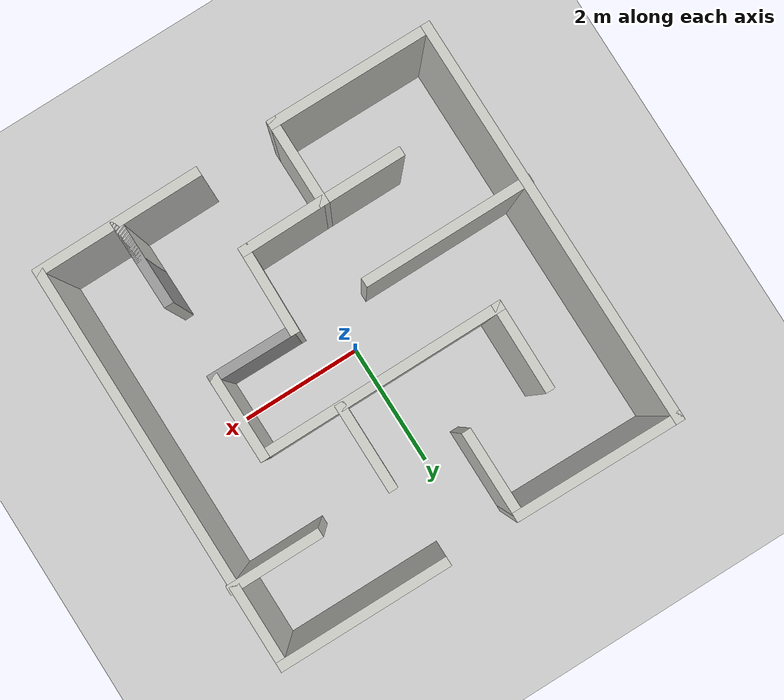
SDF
<sdf version="1.7">
 <world name="default">
  <light name="sun" type="directional">
   <pose>0 0 10 0 -0 0</pose>
   <diffuse>0.8 0.8 0.8 1</diffuse>
   <specular>0.2 0.2 0.2 1</specular>
   <attenuation>
    <range>1000</range>
    <constant>0.9</constant>
    <linear>0.01</linear>
    <quadratic>0.001</quadratic>
   </attenuation>
   <direction>-0.5 0.1 -0.9</direction>
   <spot><inner_angle>0</inner_angle><outer_angle>0</outer_angle><falloff>0</falloff></spot>
  </light>
  <model name="ground_plane">
   <static>1</static>
   <link name="link">
    <collision name="collision">
     <geometry><plane><normal>0 0 1</normal><size>100 100</size></plane></geometry>
     <surface><friction><ode><mu>100</mu><mu2>50</mu2></ode></friction></surface>
    </collision>
    <visual name="visual">
     <cast_shadows>0</cast_shadows>
     <geometry><plane><normal>0 0 1</normal><size>100 100</size></plane></geometry>
     <material>
      <script><uri>file://media/materials/scripts/gazebo.material</uri><name>Gazebo/Grey</name></script>
     </material>
    </visual>
   </link>
  </model>
  <gravity>0 0 -9.8</gravity>
  <magnetic_field>6e-06 2.3e-05 -4.2e-05</magnetic_field>
  <atmosphere type="adiabatic"/>
  <physics type="ode">
   <max_step_size>0.001</max_step_size>
   <real_time_factor>1</real_time_factor>
   <real_time_update_rate>1000</real_time_update_rate>
  </physics>
  <scene><ambient>0.4 0.4 0.4 1</ambient><background>0.7 0.7 0.7 1</background><shadows>1</shadows></scene>
  <audio><device>default</device></audio>
  <spherical_coordinates>
   <surface_model>EARTH_WGS84</surface_model>
   <latitude_deg>0</latitude_deg>
   <longitude_deg>0</longitude_deg>
   <elevation>0</elevation>
   <heading_deg>0</heading_deg>
  </spherical_coordinates>
  <model name="maze">
   <pose>0.007808 0.024064 0 0 -0 0</pose>
   <link name="Wall_14">
    <collision name="Wall_14_Collision">
     <geometry><box><size>6.59001 0.15 2.5</size></box></geometry>
     <pose>0 0 1.25 0 -0 0</pose>
    </collision>
    <visual name="Wall_14_Visual">
     <pose>0 0 1.25 0 -0 0</pose>
     <geometry><box><size>6.59001 0.15 2.5</size></box></geometry>
     <material>
      <script><uri>file://media/materials/scripts/gazebo.material</uri><name>Gazebo/CeilingTiled</name></script>
      <ambient>1 1 1 1</ambient>
     </material>
     <meta><layer>0</layer></meta>
    </visual>
    <pose>-3.21047 0.005435 0 0 -0 -1.56901</pose>
   </link>
   <link name="Wall_15">
    <collision name="Wall_15_Collision">
     <geometry><box><size>2.69215 0.15 2.5</size></box></geometry>
     <pose>0 0 1.25 0 -0 0</pose>
    </collision>
    <visual name="Wall_15_Visual">
     <pose>0 0 1.25 0 -0 0</pose>
     <geometry><box><size>2.69215 0.15 2.5</size></box></geometry>
     <material>
      <script><uri>file://media/materials/scripts/gazebo.material</uri><name>Gazebo/CeilingTiled</name></script>
      <ambient>1 1 1 1</ambient>
     </material>
     <meta><layer>0</layer></meta>
    </visual>
    <pose>-1.93397 -3.22031 0 0 -0 -0.004525</pose>
   </link>
   <link name="Wall_16">
    <collision name="Wall_16_Collision">
     <geometry><box><size>1.4382 0.15 2.5</size></box></geometry>
     <pose>0 0 1.25 0 -0 0</pose>
    </collision>
    <visual name="Wall_16_Visual">
     <pose>0 0 1.25 0 -0 0</pose>
     <geometry><box><size>1.4382 0.15 2.5</size></box></geometry>
     <material>
      <script><uri>file://media/materials/scripts/gazebo.material</uri><name>Gazebo/CeilingTiled</name></script>
      <ambient>1 1 1 1</ambient>
     </material>
     <meta><layer>0</layer></meta>
    </visual>
    <pose>-0.663217 -2.58207 0 0 -0 1.5708</pose>
   </link>
   <link name="Wall_17">
    <collision name="Wall_17_Collision">
     <geometry><box><size>1.392 0.15 2.5</size></box></geometry>
     <pose>0 0 1.25 0 -0 0</pose>
    </collision>
    <visual name="Wall_17_Visual">
     <pose>0 0 1.25 0 -0 0</pose>
     <geometry><box><size>1.392 0.15 2.5</size></box></geometry>
     <material>
      <script><uri>file://media/materials/scripts/gazebo.material</uri><name>Gazebo/CeilingTiled</name></script>
      <ambient>1 1 1 1</ambient>
     </material>
     <meta><layer>0</layer></meta>
    </visual>
    <pose>-1.28422 -1.93806 0 0 -0 3.14159</pose>
   </link>
   <link name="Wall_19">
    <collision name="Wall_19_Collision">
     <geometry><box><size>1.42655 0.15 2.5</size></box></geometry>
     <pose>0 0 1.25 0 -0 0</pose>
    </collision>
    <visual name="Wall_19_Visual">
     <pose>0 0 1.25 0 -0 0</pose>
     <geometry><box><size>1.42655 0.15 2.5</size></box></geometry>
     <material>
      <script><uri>file://media/materials/scripts/gazebo.material</uri><name>Gazebo/CeilingTiled</name></script>
      <ambient>1 1 1 1</ambient>
     </material>
     <meta><layer>0</layer></meta>
    </visual>
    <pose>-0.024967 -1.93232 0 0 -0 0.009009</pose>
   </link>
   <link name="Wall_20">
    <collision name="Wall_20_Collision">
     <geometry><box><size>1.4382 0.15 2.5</size></box></geometry>
     <pose>0 0 1.25 0 -0 0</pose>
    </collision>
    <visual name="Wall_20_Visual">
     <pose>0 0 1.25 0 -0 0</pose>
     <geometry><box><size>1.4382 0.15 2.5</size></box></geometry>
     <material>
      <script><uri>file://media/materials/scripts/gazebo.material</uri><name>Gazebo/CeilingTiled</name></script>
      <ambient>1 1 1 1</ambient>
     </material>
     <meta><layer>0</layer></meta>
    </visual>
    <pose>0.624783 -1.28256 0 0 -0 1.55294</pose>
   </link>
   <link name="Wall_21">
    <collision name="Wall_21_Collision">
     <geometry><box><size>1.43002 0.15 2.5</size></box></geometry>
     <pose>0 0 1.25 0 -0 0</pose>
    </collision>
    <visual name="Wall_21_Visual">
     <pose>0 0 1.25 0 -0 0</pose>
     <geometry><box><size>1.43002 0.15 2.5</size></box></geometry>
     <material>
      <script><uri>file://media/materials/scripts/gazebo.material</uri><name>Gazebo/Grey</name></script>
      <ambient>1 1 1 1</ambient>
     </material>
     <meta><layer>0</layer></meta>
    </visual>
    <pose>1.27626 -0.644588 0 0 -0 -0.009411</pose>
   </link>
   <link name="Wall_22">
    <collision name="Wall_22_Collision">
     <geometry><box><size>1.41359 0.15 2.5</size></box></geometry>
     <pose>0 0 1.25 0 -0 0</pose>
    </collision>
    <visual name="Wall_22_Visual">
     <pose>0 0 1.25 0 -0 0</pose>
     <geometry><box><size>1.41359 0.15 2.5</size></box></geometry>
     <material>
      <script><uri>file://media/materials/scripts/gazebo.material</uri><name>Gazebo/CeilingTiled</name></script>
      <ambient>1 1 1 1</ambient>
     </material>
     <meta><layer>0</layer></meta>
    </visual>
    <pose>1.91339 -0.018823 0 0 -0 1.57532</pose>
   </link>
   <link name="Wall_23">
    <collision name="Wall_23_Collision">
     <geometry><box><size>4 0.15 2.5</size></box></geometry>
     <pose>0 0 1.25 0 -0 0</pose>
    </collision>
    <visual name="Wall_23_Visual">
     <pose>0 0 1.25 0 -0 0</pose>
     <geometry><box><size>4 0.15 2.5</size></box></geometry>
     <material>
      <script><uri>file://media/materials/scripts/gazebo.material</uri><name>Gazebo/CeilingTiled</name></script>
      <ambient>1 1 1 1</ambient>
     </material>
     <meta><layer>0</layer></meta>
    </visual>
    <pose>-0.014472 0.612964 0 0 -0 3.14159</pose>
   </link>
   <link name="Wall_26">
    <collision name="Wall_26_Collision">
     <geometry><box><size>1.44123 0.15 2.5</size></box></geometry>
     <pose>0 0 1.25 0 -0 0</pose>
    </collision>
    <visual name="Wall_26_Visual">
     <pose>0 0 1.25 0 -0 0</pose>
     <geometry><box><size>1.44123 0.15 2.5</size></box></geometry>
     <material>
      <script><uri>file://media/materials/scripts/gazebo.material</uri><name>Gazebo/CeilingTiled</name></script>
      <ambient>1 1 1 1</ambient>
     </material>
     <meta><layer>0</layer></meta>
    </visual>
    <pose>-1.93439 1.25856 0 0 -0 1.56292</pose>
   </link>
   <link name="Wall_28">
    <collision name="Wall_28_Collision">
     <geometry><box><size>2.75 0.15 2.5</size></box></geometry>
     <pose>0 0 1.25 0 -0 0</pose>
    </collision>
    <visual name="Wall_28_Visual">
     <pose>0 0 1.25 0 -0 0</pose>
     <geometry><box><size>2.75 0.15 2.5</size></box></geometry>
     <material>
      <script><uri>file://media/materials/scripts/gazebo.material</uri><name>Gazebo/CeilingTiled</name></script>
      <ambient>1 1 1 1</ambient>
     </material>
     <meta><layer>0</layer></meta>
    </visual>
    <pose>-1.91929 -0.659919 0 0 -0 0</pose>
   </link>
   <link name="Wall_30">
    <collision name="Wall_30_Collision">
     <geometry><box><size>1.41901 0.15 2.5</size></box></geometry>
     <pose>0 0 1.25 0 -0 0</pose>
    </collision>
    <visual name="Wall_30_Visual">
     <pose>0 0 1.25 0 -0 0</pose>
     <geometry><box><size>1.41901 0.15 2.5</size></box></geometry>
     <material>
      <script><uri>file://media/materials/scripts/gazebo.material</uri><name>Gazebo/CeilingTiled</name></script>
      <ambient>1 1 1 1</ambient>
     </material>
     <meta><layer>0</layer></meta>
    </visual>
    <pose>0.639988 1.27359 0 0 -0 1.5708</pose>
   </link>
   <link name="Wall_32">
    <collision name="Wall_32_Collision">
     <geometry><box><size>2.72379 0.15 2.5</size></box></geometry>
     <pose>0 0 1.25 0 -0 0</pose>
    </collision>
    <visual name="Wall_32_Visual">
     <pose>0 0 1.25 0 -0 0</pose>
     <geometry><box><size>2.72379 0.15 2.5</size></box></geometry>
     <material>
      <script><uri>file://media/materials/scripts/gazebo.material</uri><name>Gazebo/CeilingTiled</name></script>
      <ambient>1 1 1 1</ambient>
     </material>
     <meta><layer>0</layer></meta>
    </visual>
    <pose>-1.92984 3.20879 0 0 -0 -0.012941</pose>
   </link>
   <link name="Wall_33">
    <collision name="Wall_33_Collision">
     <geometry><box><size>1.44605 0.15 2.5</size></box></geometry>
     <pose>0 0 1.25 0 -0 0</pose>
    </collision>
    <visual name="Wall_33_Visual">
     <pose>0 0 1.25 0 -0 0</pose>
     <geometry><box><size>1.44605 0.15 2.5</size></box></geometry>
     <material>
      <script><uri>file://media/materials/scripts/gazebo.material</uri><name>Gazebo/CeilingTiled</name></script>
      <ambient>1 1 1 1</ambient>
     </material>
     <meta><layer>0</layer></meta>
    </visual>
    <pose>-0.643463 2.54412 0 0 -0 -1.5708</pose>
   </link>
   <link name="Wall_35">
    <collision name="Wall_35_Collision">
     <geometry><box><size>2.75536 0.15 2.5</size></box></geometry>
     <pose>0 0 1.25 0 -0 0</pose>
    </collision>
    <visual name="Wall_35_Visual">
     <pose>0 0 1.25 0 -0 0</pose>
     <geometry><box><size>2.75536 0.15 2.5</size></box></geometry>
     <material>
      <script><uri>file://media/materials/scripts/gazebo.material</uri><name>Gazebo/CeilingTiled</name></script>
      <ambient>1 1 1 1</ambient>
     </material>
     <meta><layer>0</layer></meta>
    </visual>
    <pose>1.88912 3.19875 0 0 -0 -0.005076</pose>
   </link>
   <link name="Wall_36">
    <collision name="Wall_36_Collision">
     <geometry><box><size>6.53768 0.15 2.5</size></box></geometry>
     <pose>0 0 1.25 0 -0 0</pose>
    </collision>
    <visual name="Wall_36_Visual">
     <pose>0 0 1.25 0 -0 0</pose>
     <geometry><box><size>6.53768 0.15 2.5</size></box></geometry>
     <material>
      <script><uri>file://media/materials/scripts/gazebo.material</uri><name>Gazebo/CeilingTiled</name></script>
      <ambient>1 1 1 1</ambient>
     </material>
     <meta><layer>0</layer></meta>
    </visual>
    <pose>3.19179 -0.001697 0 0 -0 -1.5708</pose>
   </link>
   <link name="Wall_37">
    <collision name="Wall_37_Collision">
     <geometry><box><size>2.70246 0.15 2.5</size></box></geometry>
     <pose>0 0 1.25 0 -0 0</pose>
    </collision>
    <visual name="Wall_37_Visual">
     <pose>0 0 1.25 0 -0 0</pose>
     <geometry><box><size>2.70246 0.15 2.5</size></box></geometry>
     <material>
      <script><uri>file://media/materials/scripts/gazebo.material</uri><name>Gazebo/CeilingTiled</name></script>
      <ambient>1 1 1 1</ambient>
     </material>
     <meta><layer>0</layer></meta>
    </visual>
    <pose>1.91557 -3.20215 0 0 -0 -3.13641</pose>
   </link>
   <link name="Wall_39">
    <collision name="Wall_39_Collision">
     <geometry><box><size>1.41967 0.15 2.5</size></box></geometry>
     <pose>0 0 1.25 0 -0 0</pose>
    </collision>
    <visual name="Wall_39_Visual">
     <pose>0 0 1.25 0 -0 0</pose>
     <geometry><box><size>1.41967 0.15 2.5</size></box></geometry>
     <material>
      <script><uri>file://media/materials/scripts/gazebo.material</uri><name>Gazebo/Grey</name></script>
      <ambient>1 1 1 1</ambient>
     </material>
     <meta><layer>0</layer></meta>
    </visual>
    <pose>1.91557 -2.54751 0 0 -0 -1.56038</pose>
   </link>
   <link name="Wall_40">
    <collision name="Wall_40_Collision">
     <geometry><box><size>1.41967 0.15 2.5</size></box></geometry>
     <pose>0 0 1.25 0 -0 0</pose>
    </collision>
    <visual name="Wall_40_Visual">
     <pose>0 0 1.25 0 -0 0</pose>
     <geometry><box><size>1.41967 0.15 2.5</size></box></geometry>
     <material>
      <script><uri>file://media/materials/scripts/gazebo.material</uri><name>Gazebo/CeilingTiled</name></script>
      <ambient>1 1 1 1</ambient>
     </material>
     <meta><layer>0</layer></meta>
    </visual>
    <pose>1.91557 -2.54751 0 0 -0 1.58121</pose>
   </link>
   <link name="Wall_42">
    <collision name="Wall_42_Collision">
     <geometry><box><size>1.5 0.15 2.5</size></box></geometry>
     <pose>0 0 1.25 0 -0 0</pose>
    </collision>
    <visual name="Wall_42_Visual">
     <pose>0 0 1.25 0 -0 0</pose>
     <geometry><box><size>1.5 0.15 2.5</size></box></geometry>
     <material>
      <script><uri>file://media/materials/scripts/gazebo.material</uri><name>Gazebo/CeilingTiled</name></script>
      <ambient>1 1 1 1</ambient>
     </material>
     <meta><layer>0</layer></meta>
    </visual>
    <pose>2.54429 1.93576 0 0 -0 0</pose>
   </link>
   <static>1</static>
  </model>
 </world>
</sdf>
